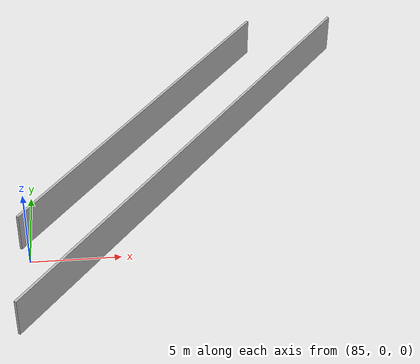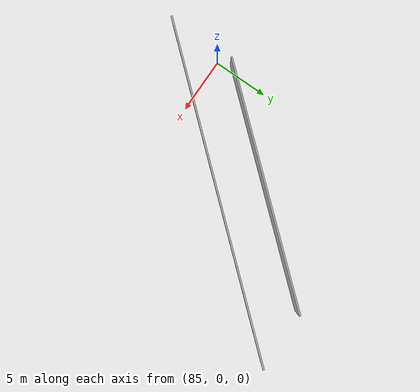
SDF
<?xml version="1.0" ?>
<sdf version="1.6">
  <model name="sps_0623">
    <pose frame="">0 0 0 0 -0 0</pose>
    <static>1</static>
    <self_collide>0</self_collide>
    <allow_auto_disable>0</allow_auto_disable>
    <link name="Wall229">
      <kinematic>0</kinematic>
      <gravity>1</gravity>
      <self_collide>0</self_collide>
      <collision name="collision">
        <geometry>
          <box>
            <size>30.3024 0.15 2.5</size>
          </box>
        </geometry>
        <pose frame="">0 0 0 0 -0 0</pose>
      </collision>
      <visual name="visual">
        <geometry>
          <box>
            <size>30.3024 0.15 2.5</size>
          </box>
        </geometry>
        <pose frame="">0 0 0 0 -0 0</pose>
        <cast_shadows>1</cast_shadows>
        <transparency>0.0</transparency>
      </visual>
      <pose frame="">94.3679 6.42231 1.25 0 0 -2.28275</pose>
    </link>
    <link name="Wall450">
      <kinematic>0</kinematic>
      <gravity>1</gravity>
      <self_collide>0</self_collide>
      <collision name="collision">
        <geometry>
          <box>
            <size>22.2138 0.15 2.5</size>
          </box>
        </geometry>
        <pose frame="">0 0 0 0 -0 0</pose>
      </collision>
      <visual name="visual">
        <geometry>
          <box>
            <size>22.2138 0.15 2.5</size>
          </box>
        </geometry>
        <pose frame="">0 0 0 0 -0 0</pose>
        <cast_shadows>1</cast_shadows>
        <transparency>0.0</transparency>
      </visual>
      <pose frame="">91.7256 9.48413 1.25 0 0 -2.28274</pose>
    </link>
  </model>
</sdf>
